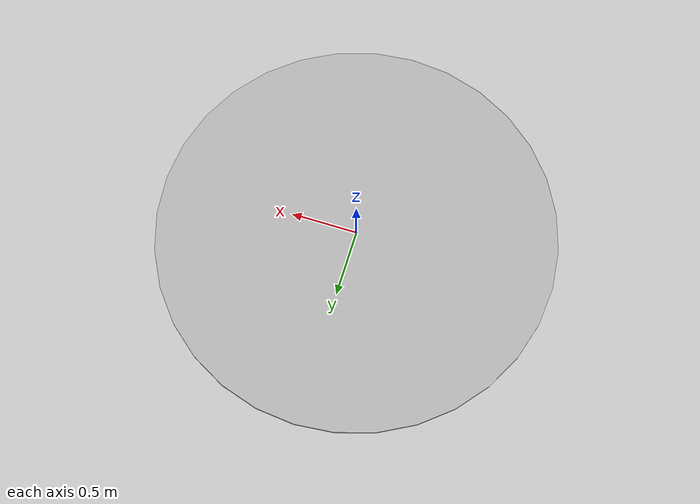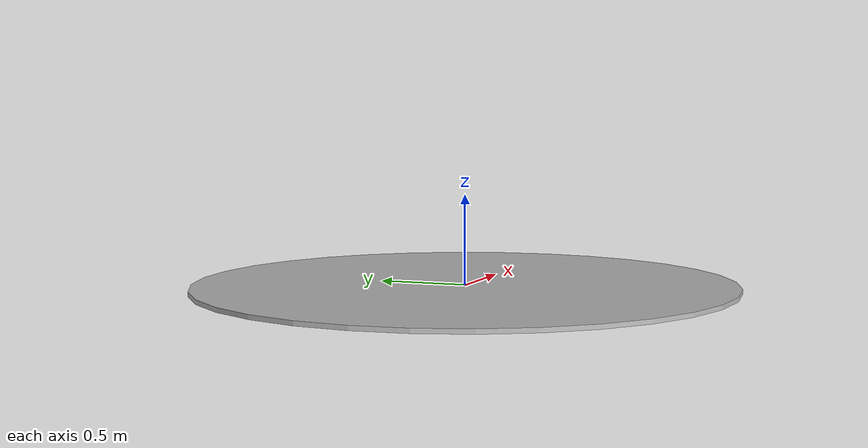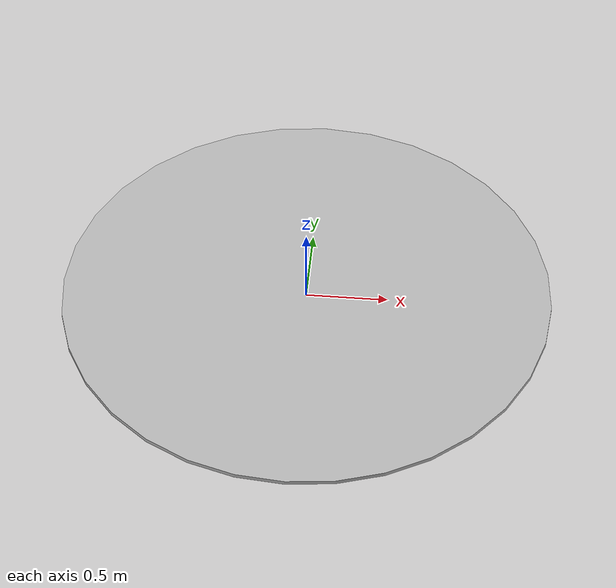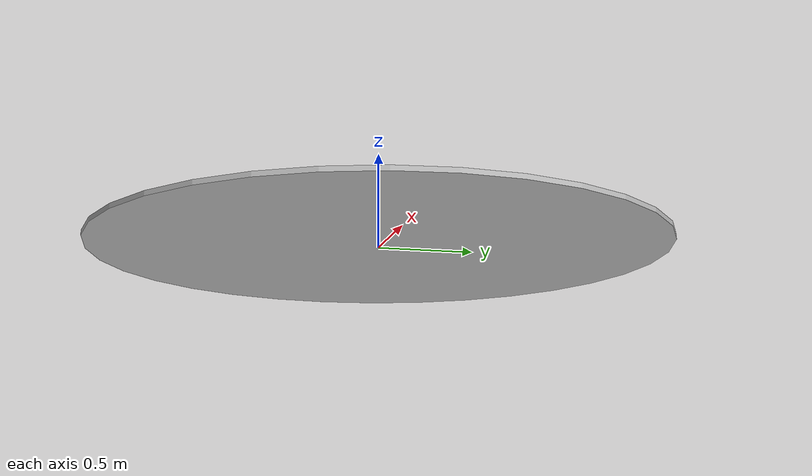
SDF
<?xml version="1.0"?>
<sdf version="1.6">
  <model name="dartboard">
    <static>true</static>
    <link name="dartboard_link">

      <!-- VISUAL -->
      <visual name="dartboard_visual">
        <pose>0 0 0 0 0 0</pose>
        <geometry>
          <mesh>
            <uri>model://dart_mesh/meshes/dartboard.dae</uri>
            <scale>0.3 0.3 0.05</scale>
          </mesh>
        </geometry>
      </visual>

      <!-- COLLISION (gunakan silinder tipis) -->
      <collision name="dartboard_collision">
        <geometry>
          <cylinder>
            <radius>1.5</radius>
            <length>0.05</length>
          </cylinder>
        </geometry>
      </collision>

    </link>
  </model>
</sdf>
